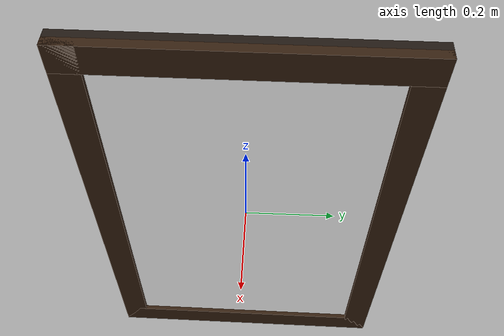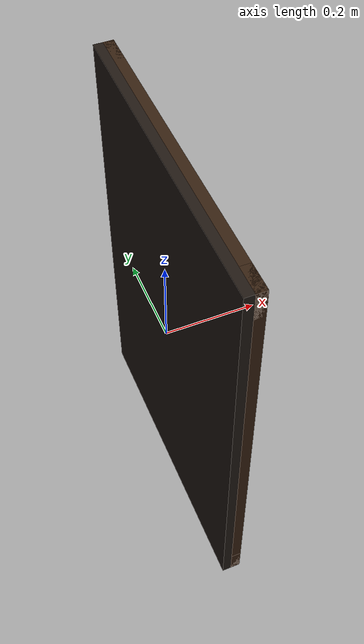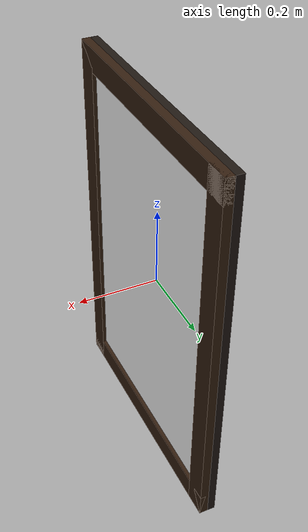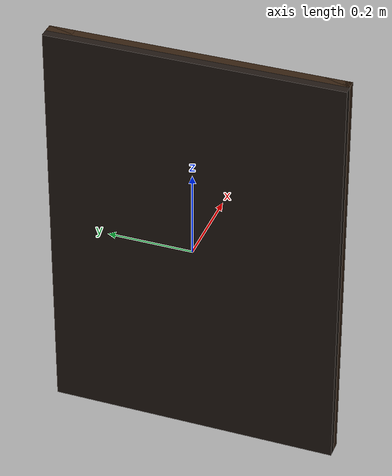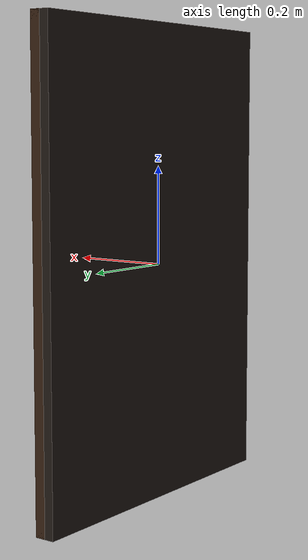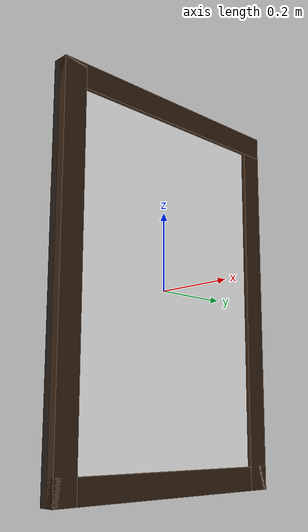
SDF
<?xml version="1.0" ?>
<sdf version="1.9">
  <model name="no_talk_poster">
    <static>true</static>
    <link name="link">

      <collision name="frame_col">
        <pose>0.021 0 0 0 0 0</pose>
        <geometry><box><size>0.052 0.68 0.98</size></box></geometry>
      </collision>

      <visual name="back_plate">
        <pose>0.005 0 0 0 0 0</pose>
        <geometry><box><size>0.020 0.68 0.98</size></box></geometry>
        <material><ambient>0.06 0.05 0.04 1</ambient><diffuse>0.12 0.09 0.07 1</diffuse><specular>0.05 0.05 0.05 1</specular></material>
      </visual>

      <visual name="print">
        <pose>0.021 0 0 0 0 0</pose>
        <geometry><box><size>0.012 0.60 0.90</size></box></geometry>
        <material><ambient>1 1 1 1</ambient><diffuse>1 1 1 1</diffuse>
          <pbr><metal><albedo_map>no_talk.png</albedo_map><metalness>0</metalness><roughness>0.9</roughness></metal></pbr>
        </material>
      </visual>

      <!-- Dark wood rails, standing 1 cm proud of the print. -->
      <visual name="rail_top">
        <pose>0.026 0 0.46 0 0 0</pose>
        <geometry><box><size>0.022 0.68 0.060</size></box></geometry>
        <material><ambient>0.10 0.06 0.03 1</ambient><diffuse>0.20 0.12 0.06 1</diffuse><specular>0.15 0.12 0.10 1</specular></material>
      </visual>
      <visual name="rail_bottom">
        <pose>0.026 0 -0.46 0 0 0</pose>
        <geometry><box><size>0.022 0.68 0.060</size></box></geometry>
        <material><ambient>0.10 0.06 0.03 1</ambient><diffuse>0.20 0.12 0.06 1</diffuse><specular>0.15 0.12 0.10 1</specular></material>
      </visual>
      <visual name="rail_left">
        <pose>0.026 0.31 0 0 0 0</pose>
        <geometry><box><size>0.022 0.060 0.98</size></box></geometry>
        <material><ambient>0.10 0.06 0.03 1</ambient><diffuse>0.20 0.12 0.06 1</diffuse><specular>0.15 0.12 0.10 1</specular></material>
      </visual>
      <visual name="rail_right">
        <pose>0.026 -0.31 0 0 0 0</pose>
        <geometry><box><size>0.022 0.060 0.98</size></box></geometry>
        <material><ambient>0.10 0.06 0.03 1</ambient><diffuse>0.20 0.12 0.06 1</diffuse><specular>0.15 0.12 0.10 1</specular></material>
      </visual>

    </link>
  </model>
</sdf>
